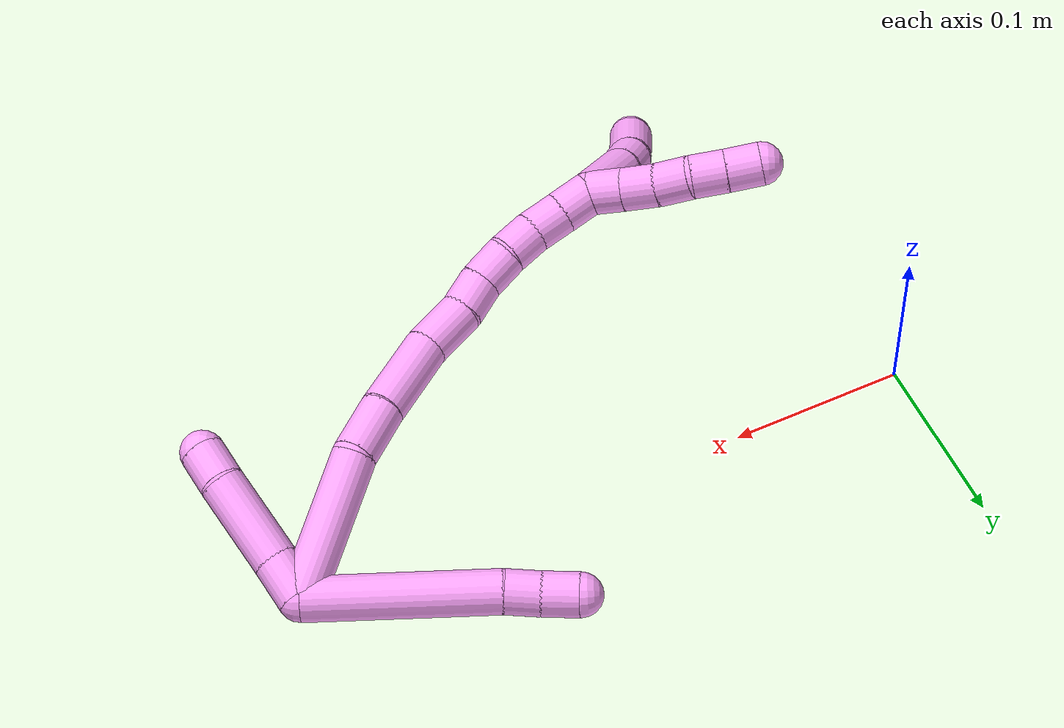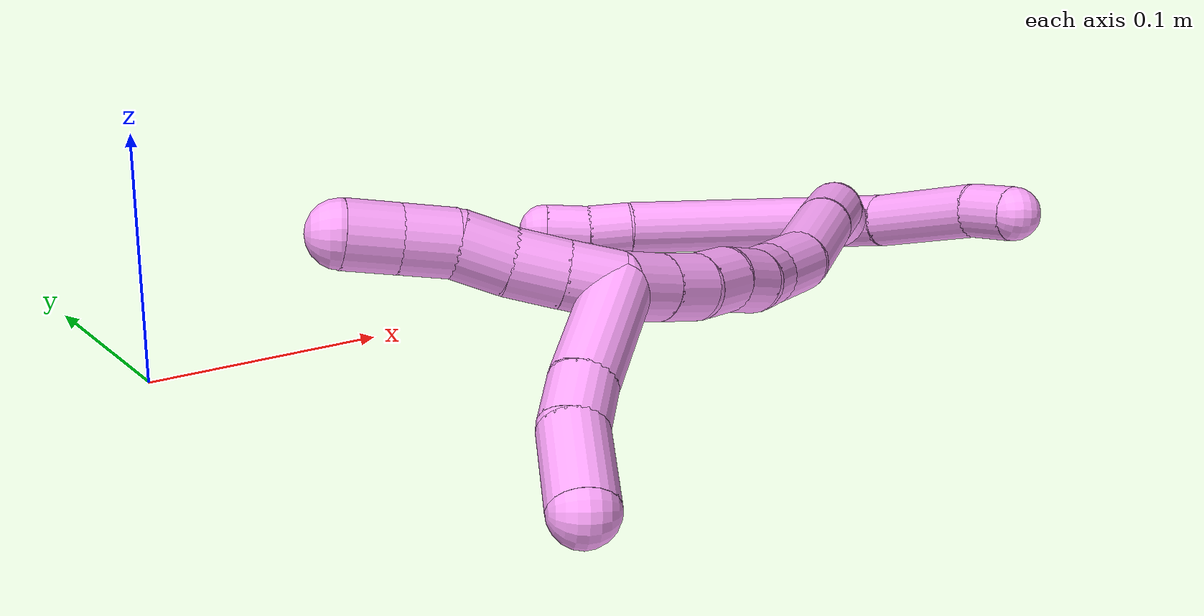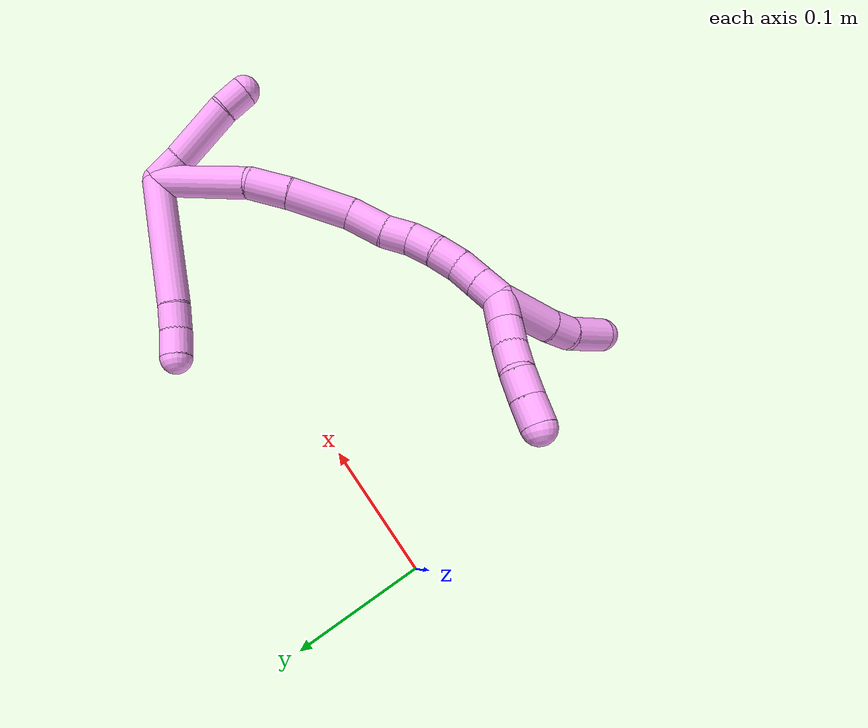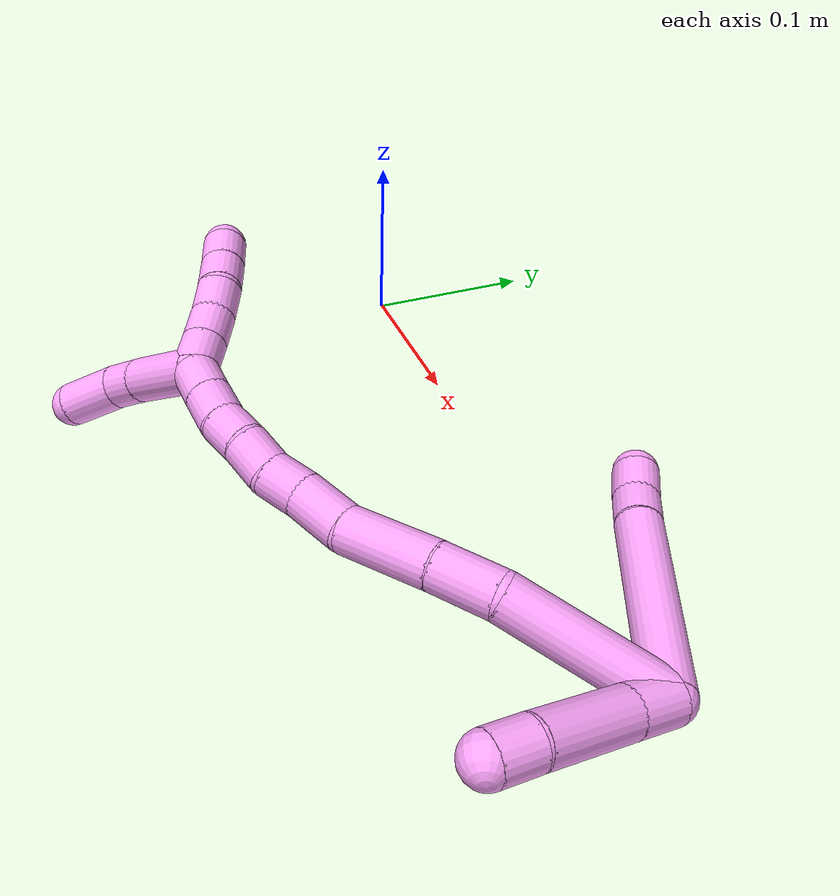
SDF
<sdf version="1.7">
 <world name="default">
  <model name="4">
   <static>0</static>
   <link name="4">
    <collision name="collision-cylinder-e_1_2_8">
     <pose>-0.000386 -0.00151 -0.054261 3.11378 -0.007118 -0.501071</pose>
     <geometry><cylinder><radius>0.0125</radius><length>0.108567</length></cylinder></geometry>
     <surface>
      <friction><ode><mu>1.16</mu><mu2>1.16</mu2><slip1>0</slip1><slip2>0</slip2></ode></friction>
      <contact><ode><kp>1e+06</kp><kd>1</kd><max_vel>0</max_vel><min_depth>0.001</min_depth></ode></contact>
     </surface>
    </collision>
    <visual name="visual-cylinder-e_1_2_8">
     <pose>-0.000386 -0.00151 -0.054261 3.11378 -0.007118 -0.501071</pose>
     <geometry><cylinder><radius>0.0125</radius><length>0.108567</length></cylinder></geometry>
     <material><ambient>1 0.65098 0.996078 1</ambient></material>
    </visual>
    <collision name="collision-cylinder-e_2_8_9">
     <pose>-9.3e-05 -0.004049 -0.118611 3.03983 0.066948 1.16338</pose>
     <geometry><cylinder><radius>0.0125</radius><length>0.020329</length></cylinder></geometry>
     <surface>
      <friction><ode><mu>1.16</mu><mu2>1.16</mu2><slip1>0</slip1><slip2>0</slip2></ode></friction>
      <contact><ode><kp>1e+06</kp><kd>1</kd><max_vel>0</max_vel><min_depth>0.001</min_depth></ode></contact>
     </surface>
    </collision>
    <visual name="visual-cylinder-e_2_8_9">
     <pose>-9.3e-05 -0.004049 -0.118611 3.03983 0.066948 1.16338</pose>
     <geometry><cylinder><radius>0.0125</radius><length>0.020329</length></cylinder></geometry>
     <material><ambient>1 0.65098 0.996078 1</ambient></material>
    </visual>
    <collision name="collision-cylinder-e_3_9_6">
     <pose>0.0015 -0.004852 -0.13921 -3.11992 0.086626 -2.65147</pose>
     <geometry><cylinder><radius>0.0125</radius><length>0.021105</length></cylinder></geometry>
     <surface>
      <friction><ode><mu>1.16</mu><mu2>1.16</mu2><slip1>0</slip1><slip2>0</slip2></ode></friction>
      <contact><ode><kp>1e+06</kp><kd>1</kd><max_vel>0</max_vel><min_depth>0.001</min_depth></ode></contact>
     </surface>
    </collision>
    <visual name="visual-cylinder-e_3_9_6">
     <pose>0.0015 -0.004852 -0.13921 -3.11992 0.086626 -2.65147</pose>
     <geometry><cylinder><radius>0.0125</radius><length>0.021105</length></cylinder></geometry>
     <material><ambient>1 0.65098 0.996078 1</ambient></material>
    </visual>
    <collision name="collision-cylinder-e_1_2_10">
     <pose>-0.01057 0.00225 0.0066 -0.328546 -0.98767 0.178001</pose>
     <geometry><cylinder><radius>0.0125</radius><length>0.025326</length></cylinder></geometry>
     <surface>
      <friction><ode><mu>1.16</mu><mu2>1.16</mu2><slip1>0</slip1><slip2>0</slip2></ode></friction>
      <contact><ode><kp>1e+06</kp><kd>1</kd><max_vel>0</max_vel><min_depth>0.001</min_depth></ode></contact>
     </surface>
    </collision>
    <visual name="visual-cylinder-e_1_2_10">
     <pose>-0.01057 0.00225 0.0066 -0.328546 -0.98767 0.178001</pose>
     <geometry><cylinder><radius>0.0125</radius><length>0.025326</length></cylinder></geometry>
     <material><ambient>1 0.65098 0.996078 1</ambient></material>
    </visual>
    <collision name="collision-cylinder-e_2_10_11">
     <pose>-0.042441 0.010859 0.027547 -0.417222 -0.935802 0.213136</pose>
     <geometry><cylinder><radius>0.0125</radius><length>0.052915</length></cylinder></geometry>
     <surface>
      <friction><ode><mu>1.16</mu><mu2>1.16</mu2><slip1>0</slip1><slip2>0</slip2></ode></friction>
      <contact><ode><kp>1e+06</kp><kd>1</kd><max_vel>0</max_vel><min_depth>0.001</min_depth></ode></contact>
     </surface>
    </collision>
    <visual name="visual-cylinder-e_2_10_11">
     <pose>-0.042441 0.010859 0.027547 -0.417222 -0.935802 0.213136</pose>
     <geometry><cylinder><radius>0.0125</radius><length>0.052915</length></cylinder></geometry>
     <material><ambient>1 0.65098 0.996078 1</ambient></material>
    </visual>
    <collision name="collision-cylinder-e_3_11_5">
     <pose>-0.073067 0.01815 0.04742 -0.16697 -1.02974 0.094616</pose>
     <geometry><cylinder><radius>0.0125</radius><length>0.021759</length></cylinder></geometry>
     <surface>
      <friction><ode><mu>1.16</mu><mu2>1.16</mu2><slip1>0</slip1><slip2>0</slip2></ode></friction>
      <contact><ode><kp>1e+06</kp><kd>1</kd><max_vel>0</max_vel><min_depth>0.001</min_depth></ode></contact>
     </surface>
    </collision>
    <visual name="visual-cylinder-e_3_11_5">
     <pose>-0.073067 0.01815 0.04742 -0.16697 -1.02974 0.094616</pose>
     <geometry><cylinder><radius>0.0125</radius><length>0.021759</length></cylinder></geometry>
     <material><ambient>1 0.65098 0.996078 1</ambient></material>
    </visual>
    <collision name="collision-cylinder-e_1_2_12">
     <pose>-0.03787 0.009881 -0.014975 -2.55835 -1.12836 2.25572</pose>
     <geometry><cylinder><radius>0.0125</radius><length>0.083811</length></cylinder></geometry>
     <surface>
      <friction><ode><mu>1.16</mu><mu2>1.16</mu2><slip1>0</slip1><slip2>0</slip2></ode></friction>
      <contact><ode><kp>1e+06</kp><kd>1</kd><max_vel>0</max_vel><min_depth>0.001</min_depth></ode></contact>
     </surface>
    </collision>
    <visual name="visual-cylinder-e_1_2_12">
     <pose>-0.03787 0.009881 -0.014975 -2.55835 -1.12836 2.25572</pose>
     <geometry><cylinder><radius>0.0125</radius><length>0.083811</length></cylinder></geometry>
     <material><ambient>1 0.65098 0.996078 1</ambient></material>
    </visual>
    <collision name="collision-cylinder-e_2_12_13">
     <pose>-0.09042 0.018939 -0.037362 3.03105 -1.10076 -2.96175</pose>
     <geometry><cylinder><radius>0.0125</radius><length>0.032928</length></cylinder></geometry>
     <surface>
      <friction><ode><mu>1.16</mu><mu2>1.16</mu2><slip1>0</slip1><slip2>0</slip2></ode></friction>
      <contact><ode><kp>1e+06</kp><kd>1</kd><max_vel>0</max_vel><min_depth>0.001</min_depth></ode></contact>
     </surface>
    </collision>
    <visual name="visual-cylinder-e_2_12_13">
     <pose>-0.09042 0.018939 -0.037362 3.03105 -1.10076 -2.96175</pose>
     <geometry><cylinder><radius>0.0125</radius><length>0.032928</length></cylinder></geometry>
     <material><ambient>1 0.65098 0.996078 1</ambient></material>
    </visual>
    <collision name="collision-cylinder-e_3_13_14">
     <pose>-0.126453 0.014741 -0.056479 2.86086 -1.05237 -2.66431</pose>
     <geometry><cylinder><radius>0.0125</radius><length>0.04917</length></cylinder></geometry>
     <surface>
      <friction><ode><mu>1.16</mu><mu2>1.16</mu2><slip1>0</slip1><slip2>0</slip2></ode></friction>
      <contact><ode><kp>1e+06</kp><kd>1</kd><max_vel>0</max_vel><min_depth>0.001</min_depth></ode></contact>
     </surface>
    </collision>
    <visual name="visual-cylinder-e_3_13_14">
     <pose>-0.126453 0.014741 -0.056479 2.86086 -1.05237 -2.66431</pose>
     <geometry><cylinder><radius>0.0125</radius><length>0.04917</length></cylinder></geometry>
     <material><ambient>1 0.65098 0.996078 1</ambient></material>
    </visual>
    <collision name="collision-cylinder-e_4_14_15">
     <pose>-0.159196 0.011163 -0.078162 3.12119 -0.851246 -3.09659</pose>
     <geometry><cylinder><radius>0.0125</radius><length>0.030286</length></cylinder></geometry>
     <surface>
      <friction><ode><mu>1.16</mu><mu2>1.16</mu2><slip1>0</slip1><slip2>0</slip2></ode></friction>
      <contact><ode><kp>1e+06</kp><kd>1</kd><max_vel>0</max_vel><min_depth>0.001</min_depth></ode></contact>
     </surface>
    </collision>
    <visual name="visual-cylinder-e_4_14_15">
     <pose>-0.159196 0.011163 -0.078162 3.12119 -0.851246 -3.09659</pose>
     <geometry><cylinder><radius>0.0125</radius><length>0.030286</length></cylinder></geometry>
     <material><ambient>1 0.65098 0.996078 1</ambient></material>
    </visual>
    <collision name="collision-cylinder-e_5_15_16">
     <pose>-0.179743 0.011723 -0.093713 -3.00535 -1.01995 2.89882</pose>
     <geometry><cylinder><radius>0.0125</radius><length>0.021495</length></cylinder></geometry>
     <surface>
      <friction><ode><mu>1.16</mu><mu2>1.16</mu2><slip1>0</slip1><slip2>0</slip2></ode></friction>
      <contact><ode><kp>1e+06</kp><kd>1</kd><max_vel>0</max_vel><min_depth>0.001</min_depth></ode></contact>
     </surface>
    </collision>
    <visual name="visual-cylinder-e_5_15_16">
     <pose>-0.179743 0.011723 -0.093713 -3.00535 -1.01995 2.89882</pose>
     <geometry><cylinder><radius>0.0125</radius><length>0.021495</length></cylinder></geometry>
     <material><ambient>1 0.65098 0.996078 1</ambient></material>
    </visual>
    <collision name="collision-cylinder-e_6_16_17">
     <pose>-0.196482 0.014519 -0.10684 -2.87881 -0.769756 2.51089</pose>
     <geometry><cylinder><radius>0.0125</radius><length>0.021787</length></cylinder></geometry>
     <surface>
      <friction><ode><mu>1.16</mu><mu2>1.16</mu2><slip1>0</slip1><slip2>0</slip2></ode></friction>
      <contact><ode><kp>1e+06</kp><kd>1</kd><max_vel>0</max_vel><min_depth>0.001</min_depth></ode></contact>
     </surface>
    </collision>
    <visual name="visual-cylinder-e_6_16_17">
     <pose>-0.196482 0.014519 -0.10684 -2.87881 -0.769756 2.51089</pose>
     <geometry><cylinder><radius>0.0125</radius><length>0.021787</length></cylinder></geometry>
     <material><ambient>1 0.65098 0.996078 1</ambient></material>
    </visual>
    <collision name="collision-cylinder-e_7_17_18">
     <pose>-0.211133 0.016724 -0.121762 -3.11807 -0.764574 3.08309</pose>
     <geometry><cylinder><radius>0.0125</radius><length>0.020425</length></cylinder></geometry>
     <surface>
      <friction><ode><mu>1.16</mu><mu2>1.16</mu2><slip1>0</slip1><slip2>0</slip2></ode></friction>
      <contact><ode><kp>1e+06</kp><kd>1</kd><max_vel>0</max_vel><min_depth>0.001</min_depth></ode></contact>
     </surface>
    </collision>
    <visual name="visual-cylinder-e_7_17_18">
     <pose>-0.211133 0.016724 -0.121762 -3.11807 -0.764574 3.08309</pose>
     <geometry><cylinder><radius>0.0125</radius><length>0.020425</length></cylinder></geometry>
     <material><ambient>1 0.65098 0.996078 1</ambient></material>
    </visual>
    <collision name="collision-cylinder-e_8_18_19">
     <pose>-0.223626 0.018131 -0.137498 -2.99524 -0.570182 2.65139</pose>
     <geometry><cylinder><radius>0.0125</radius><length>0.020096</length></cylinder></geometry>
     <surface>
      <friction><ode><mu>1.16</mu><mu2>1.16</mu2><slip1>0</slip1><slip2>0</slip2></ode></friction>
      <contact><ode><kp>1e+06</kp><kd>1</kd><max_vel>0</max_vel><min_depth>0.001</min_depth></ode></contact>
     </surface>
    </collision>
    <visual name="visual-cylinder-e_8_18_19">
     <pose>-0.223626 0.018131 -0.137498 -2.99524 -0.570182 2.65139</pose>
     <geometry><cylinder><radius>0.0125</radius><length>0.020096</length></cylinder></geometry>
     <material><ambient>1 0.65098 0.996078 1</ambient></material>
    </visual>
    <collision name="collision-cylinder-e_9_19_1">
     <pose>-0.23431 0.020914 -0.154229 -2.95847 -0.553904 2.51673</pose>
     <geometry><cylinder><radius>0.0125</radius><length>0.020003</length></cylinder></geometry>
     <surface>
      <friction><ode><mu>1.16</mu><mu2>1.16</mu2><slip1>0</slip1><slip2>0</slip2></ode></friction>
      <contact><ode><kp>1e+06</kp><kd>1</kd><max_vel>0</max_vel><min_depth>0.001</min_depth></ode></contact>
     </surface>
    </collision>
    <visual name="visual-cylinder-e_9_19_1">
     <pose>-0.23431 0.020914 -0.154229 -2.95847 -0.553904 2.51673</pose>
     <geometry><cylinder><radius>0.0125</radius><length>0.020003</length></cylinder></geometry>
     <material><ambient>1 0.65098 0.996078 1</ambient></material>
    </visual>
    <collision name="collision-cylinder-e_1_1_20">
     <pose>-0.256675 0.009674 -0.171605 2.18468 -0.829906 -1.40827</pose>
     <geometry><cylinder><radius>0.0125</radius><length>0.046359</length></cylinder></geometry>
     <surface>
      <friction><ode><mu>1.16</mu><mu2>1.16</mu2><slip1>0</slip1><slip2>0</slip2></ode></friction>
      <contact><ode><kp>1e+06</kp><kd>1</kd><max_vel>0</max_vel><min_depth>0.001</min_depth></ode></contact>
     </surface>
    </collision>
    <visual name="visual-cylinder-e_1_1_20">
     <pose>-0.256675 0.009674 -0.171605 2.18468 -0.829906 -1.40827</pose>
     <geometry><cylinder><radius>0.0125</radius><length>0.046359</length></cylinder></geometry>
     <material><ambient>1 0.65098 0.996078 1</ambient></material>
    </visual>
    <collision name="collision-cylinder-e_2_20_21">
     <pose>-0.281737 -0.008774 -0.183566 2.05112 -0.894906 -1.3387</pose>
     <geometry><cylinder><radius>0.0125</radius><length>0.020403</length></cylinder></geometry>
     <surface>
      <friction><ode><mu>1.16</mu><mu2>1.16</mu2><slip1>0</slip1><slip2>0</slip2></ode></friction>
      <contact><ode><kp>1e+06</kp><kd>1</kd><max_vel>0</max_vel><min_depth>0.001</min_depth></ode></contact>
     </surface>
    </collision>
    <visual name="visual-cylinder-e_2_20_21">
     <pose>-0.281737 -0.008774 -0.183566 2.05112 -0.894906 -1.3387</pose>
     <geometry><cylinder><radius>0.0125</radius><length>0.020403</length></cylinder></geometry>
     <material><ambient>1 0.65098 0.996078 1</ambient></material>
    </visual>
    <collision name="collision-cylinder-e_3_21_4">
     <pose>-0.303632 -0.023477 -0.186939 1.61764 -0.99474 -1.03454</pose>
     <geometry><cylinder><radius>0.0125</radius><length>0.033238</length></cylinder></geometry>
     <surface>
      <friction><ode><mu>1.16</mu><mu2>1.16</mu2><slip1>0</slip1><slip2>0</slip2></ode></friction>
      <contact><ode><kp>1e+06</kp><kd>1</kd><max_vel>0</max_vel><min_depth>0.001</min_depth></ode></contact>
     </surface>
    </collision>
    <visual name="visual-cylinder-e_3_21_4">
     <pose>-0.303632 -0.023477 -0.186939 1.61764 -0.99474 -1.03454</pose>
     <geometry><cylinder><radius>0.0125</radius><length>0.033238</length></cylinder></geometry>
     <material><ambient>1 0.65098 0.996078 1</ambient></material>
    </visual>
    <collision name="collision-cylinder-e_1_1_22">
     <pose>-0.238919 0.024411 -0.17238 -2.9451 0.065232 -0.639343</pose>
     <geometry><cylinder><radius>0.0125</radius><length>0.02</length></cylinder></geometry>
     <surface>
      <friction><ode><mu>1.16</mu><mu2>1.16</mu2><slip1>0</slip1><slip2>0</slip2></ode></friction>
      <contact><ode><kp>1e+06</kp><kd>1</kd><max_vel>0</max_vel><min_depth>0.001</min_depth></ode></contact>
     </surface>
    </collision>
    <visual name="visual-cylinder-e_1_1_22">
     <pose>-0.238919 0.024411 -0.17238 -2.9451 0.065232 -0.639343</pose>
     <geometry><cylinder><radius>0.0125</radius><length>0.02</length></cylinder></geometry>
     <material><ambient>1 0.65098 0.996078 1</ambient></material>
    </visual>
    <collision name="collision-cylinder-e_2_22_23">
     <pose>-0.237701 0.028568 -0.191903 -2.91845 0.056732 -0.49607</pose>
     <geometry><cylinder><radius>0.0125</radius><length>0.02</length></cylinder></geometry>
     <surface>
      <friction><ode><mu>1.16</mu><mu2>1.16</mu2><slip1>0</slip1><slip2>0</slip2></ode></friction>
      <contact><ode><kp>1e+06</kp><kd>1</kd><max_vel>0</max_vel><min_depth>0.001</min_depth></ode></contact>
     </surface>
    </collision>
    <visual name="visual-cylinder-e_2_22_23">
     <pose>-0.237701 0.028568 -0.191903 -2.91845 0.056732 -0.49607</pose>
     <geometry><cylinder><radius>0.0125</radius><length>0.02</length></cylinder></geometry>
     <material><ambient>1 0.65098 0.996078 1</ambient></material>
    </visual>
    <collision name="collision-cylinder-e_3_23_24">
     <pose>-0.236976 0.034028 -0.211095 -2.81048 0.015769 -0.094308</pose>
     <geometry><cylinder><radius>0.0125</radius><length>0.02</length></cylinder></geometry>
     <surface>
      <friction><ode><mu>1.16</mu><mu2>1.16</mu2><slip1>0</slip1><slip2>0</slip2></ode></friction>
      <contact><ode><kp>1e+06</kp><kd>1</kd><max_vel>0</max_vel><min_depth>0.001</min_depth></ode></contact>
     </surface>
    </collision>
    <visual name="visual-cylinder-e_3_23_24">
     <pose>-0.236976 0.034028 -0.211095 -2.81048 0.015769 -0.094308</pose>
     <geometry><cylinder><radius>0.0125</radius><length>0.02</length></cylinder></geometry>
     <material><ambient>1 0.65098 0.996078 1</ambient></material>
    </visual>
    <collision name="collision-cylinder-e_4_24_25">
     <pose>-0.237692 0.0383 -0.23046 -3.03894 -0.087481 1.41134</pose>
     <geometry><cylinder><radius>0.0125</radius><length>0.02</length></cylinder></geometry>
     <surface>
      <friction><ode><mu>1.16</mu><mu2>1.16</mu2><slip1>0</slip1><slip2>0</slip2></ode></friction>
      <contact><ode><kp>1e+06</kp><kd>1</kd><max_vel>0</max_vel><min_depth>0.001</min_depth></ode></contact>
     </surface>
    </collision>
    <visual name="visual-cylinder-e_4_24_25">
     <pose>-0.237692 0.0383 -0.23046 -3.03894 -0.087481 1.41134</pose>
     <geometry><cylinder><radius>0.0125</radius><length>0.02</length></cylinder></geometry>
     <material><ambient>1 0.65098 0.996078 1</ambient></material>
    </visual>
    <collision name="collision-cylinder-e_5_25_3">
     <pose>-0.239733 0.040397 -0.250242 -3.03298 -0.117062 1.64577</pose>
     <geometry><cylinder><radius>0.0125</radius><length>0.02</length></cylinder></geometry>
     <surface>
      <friction><ode><mu>1.16</mu><mu2>1.16</mu2><slip1>0</slip1><slip2>0</slip2></ode></friction>
      <contact><ode><kp>1e+06</kp><kd>1</kd><max_vel>0</max_vel><min_depth>0.001</min_depth></ode></contact>
     </surface>
    </collision>
    <visual name="visual-cylinder-e_5_25_3">
     <pose>-0.239733 0.040397 -0.250242 -3.03298 -0.117062 1.64577</pose>
     <geometry><cylinder><radius>0.0125</radius><length>0.02</length></cylinder></geometry>
     <material><ambient>1 0.65098 0.996078 1</ambient></material>
    </visual>
    <collision name="collision-sphere-3">
     <pose>-0.240901 0.041474 -0.260115 0 -0 0</pose>
     <geometry><sphere><radius>0.0125</radius></sphere></geometry>
     <surface>
      <friction><ode><mu>1.16</mu><mu2>1.16</mu2><slip1>0</slip1><slip2>0</slip2></ode></friction>
      <contact><ode><kp>1e+06</kp><kd>1</kd><max_vel>0</max_vel><min_depth>0.001</min_depth></ode></contact>
     </surface>
    </collision>
    <visual name="visual-sphere-3">
     <pose>-0.240901 0.041474 -0.260115 0 -0 0</pose>
     <geometry><sphere><radius>0.0125</radius></sphere></geometry>
     <material><ambient>1 0.65098 0.996078 1</ambient></material>
    </visual>
    <collision name="collision-sphere-25">
     <pose>-0.238566 0.039321 -0.240369 0 -0 0</pose>
     <geometry><sphere><radius>0.0125</radius></sphere></geometry>
     <surface>
      <friction><ode><mu>1.16</mu><mu2>1.16</mu2><slip1>0</slip1><slip2>0</slip2></ode></friction>
      <contact><ode><kp>1e+06</kp><kd>1</kd><max_vel>0</max_vel><min_depth>0.001</min_depth></ode></contact>
     </surface>
    </collision>
    <visual name="visual-sphere-25">
     <pose>-0.238566 0.039321 -0.240369 0 -0 0</pose>
     <geometry><sphere><radius>0.0125</radius></sphere></geometry>
     <material><ambient>1 0.65098 0.996078 1</ambient></material>
    </visual>
    <collision name="collision-sphere-24">
     <pose>-0.236818 0.037279 -0.22055 0 -0 0</pose>
     <geometry><sphere><radius>0.0125</radius></sphere></geometry>
     <surface>
      <friction><ode><mu>1.16</mu><mu2>1.16</mu2><slip1>0</slip1><slip2>0</slip2></ode></friction>
      <contact><ode><kp>1e+06</kp><kd>1</kd><max_vel>0</max_vel><min_depth>0.001</min_depth></ode></contact>
     </surface>
    </collision>
    <visual name="visual-sphere-24">
     <pose>-0.236818 0.037279 -0.22055 0 -0 0</pose>
     <geometry><sphere><radius>0.0125</radius></sphere></geometry>
     <material><ambient>1 0.65098 0.996078 1</ambient></material>
    </visual>
    <collision name="collision-sphere-23">
     <pose>-0.237133 0.030778 -0.201639 0 -0 0</pose>
     <geometry><sphere><radius>0.0125</radius></sphere></geometry>
     <surface>
      <friction><ode><mu>1.16</mu><mu2>1.16</mu2><slip1>0</slip1><slip2>0</slip2></ode></friction>
      <contact><ode><kp>1e+06</kp><kd>1</kd><max_vel>0</max_vel><min_depth>0.001</min_depth></ode></contact>
     </surface>
    </collision>
    <visual name="visual-sphere-23">
     <pose>-0.237133 0.030778 -0.201639 0 -0 0</pose>
     <geometry><sphere><radius>0.0125</radius></sphere></geometry>
     <material><ambient>1 0.65098 0.996078 1</ambient></material>
    </visual>
    <collision name="collision-sphere-22">
     <pose>-0.238268 0.026359 -0.182166 0 -0 0</pose>
     <geometry><sphere><radius>0.0125</radius></sphere></geometry>
     <surface>
      <friction><ode><mu>1.16</mu><mu2>1.16</mu2><slip1>0</slip1><slip2>0</slip2></ode></friction>
      <contact><ode><kp>1e+06</kp><kd>1</kd><max_vel>0</max_vel><min_depth>0.001</min_depth></ode></contact>
     </surface>
    </collision>
    <visual name="visual-sphere-22">
     <pose>-0.238268 0.026359 -0.182166 0 -0 0</pose>
     <geometry><sphere><radius>0.0125</radius></sphere></geometry>
     <material><ambient>1 0.65098 0.996078 1</ambient></material>
    </visual>
    <collision name="collision-sphere-4">
     <pose>-0.317569 -0.032519 -0.187363 0 -0 0</pose>
     <geometry><sphere><radius>0.0125</radius></sphere></geometry>
     <surface>
      <friction><ode><mu>1.16</mu><mu2>1.16</mu2><slip1>0</slip1><slip2>0</slip2></ode></friction>
      <contact><ode><kp>1e+06</kp><kd>1</kd><max_vel>0</max_vel><min_depth>0.001</min_depth></ode></contact>
     </surface>
    </collision>
    <visual name="visual-sphere-4">
     <pose>-0.317569 -0.032519 -0.187363 0 -0 0</pose>
     <geometry><sphere><radius>0.0125</radius></sphere></geometry>
     <material><ambient>1 0.65098 0.996078 1</ambient></material>
    </visual>
    <collision name="collision-sphere-21">
     <pose>-0.289695 -0.014434 -0.186515 0 -0 0</pose>
     <geometry><sphere><radius>0.0125</radius></sphere></geometry>
     <surface>
      <friction><ode><mu>1.16</mu><mu2>1.16</mu2><slip1>0</slip1><slip2>0</slip2></ode></friction>
      <contact><ode><kp>1e+06</kp><kd>1</kd><max_vel>0</max_vel><min_depth>0.001</min_depth></ode></contact>
     </surface>
    </collision>
    <visual name="visual-sphere-21">
     <pose>-0.289695 -0.014434 -0.186515 0 -0 0</pose>
     <geometry><sphere><radius>0.0125</radius></sphere></geometry>
     <material><ambient>1 0.65098 0.996078 1</ambient></material>
    </visual>
    <collision name="collision-sphere-20">
     <pose>-0.273778 -0.003114 -0.180617 0 -0 0</pose>
     <geometry><sphere><radius>0.0125</radius></sphere></geometry>
     <surface>
      <friction><ode><mu>1.16</mu><mu2>1.16</mu2><slip1>0</slip1><slip2>0</slip2></ode></friction>
      <contact><ode><kp>1e+06</kp><kd>1</kd><max_vel>0</max_vel><min_depth>0.001</min_depth></ode></contact>
     </surface>
    </collision>
    <visual name="visual-sphere-20">
     <pose>-0.273778 -0.003114 -0.180617 0 -0 0</pose>
     <geometry><sphere><radius>0.0125</radius></sphere></geometry>
     <material><ambient>1 0.65098 0.996078 1</ambient></material>
    </visual>
    <collision name="collision-sphere-11">
     <pose>-0.063741 0.017219 0.041895 0 -0 0</pose>
     <geometry><sphere><radius>0.0125</radius></sphere></geometry>
     <surface>
      <friction><ode><mu>1.16</mu><mu2>1.16</mu2><slip1>0</slip1><slip2>0</slip2></ode></friction>
      <contact><ode><kp>1e+06</kp><kd>1</kd><max_vel>0</max_vel><min_depth>0.001</min_depth></ode></contact>
     </surface>
    </collision>
    <visual name="visual-sphere-11">
     <pose>-0.063741 0.017219 0.041895 0 -0 0</pose>
     <geometry><sphere><radius>0.0125</radius></sphere></geometry>
     <material><ambient>1 0.65098 0.996078 1</ambient></material>
    </visual>
    <collision name="collision-sphere-10">
     <pose>-0.02114 0.0045 0.013199 0 -0 0</pose>
     <geometry><sphere><radius>0.0125</radius></sphere></geometry>
     <surface>
      <friction><ode><mu>1.16</mu><mu2>1.16</mu2><slip1>0</slip1><slip2>0</slip2></ode></friction>
      <contact><ode><kp>1e+06</kp><kd>1</kd><max_vel>0</max_vel><min_depth>0.001</min_depth></ode></contact>
     </surface>
    </collision>
    <visual name="visual-sphere-10">
     <pose>-0.02114 0.0045 0.013199 0 -0 0</pose>
     <geometry><sphere><radius>0.0125</radius></sphere></geometry>
     <material><ambient>1 0.65098 0.996078 1</ambient></material>
    </visual>
    <collision name="collision-sphere-6">
     <pose>0.002413 -0.004624 -0.149721 0 -0 0</pose>
     <geometry><sphere><radius>0.0125</radius></sphere></geometry>
     <surface>
      <friction><ode><mu>1.16</mu><mu2>1.16</mu2><slip1>0</slip1><slip2>0</slip2></ode></friction>
      <contact><ode><kp>1e+06</kp><kd>1</kd><max_vel>0</max_vel><min_depth>0.001</min_depth></ode></contact>
     </surface>
    </collision>
    <visual name="visual-sphere-6">
     <pose>0.002413 -0.004624 -0.149721 0 -0 0</pose>
     <geometry><sphere><radius>0.0125</radius></sphere></geometry>
     <material><ambient>1 0.65098 0.996078 1</ambient></material>
    </visual>
    <collision name="collision-sphere-9">
     <pose>0.000587 -0.005079 -0.1287 0 -0 0</pose>
     <geometry><sphere><radius>0.0125</radius></sphere></geometry>
     <surface>
      <friction><ode><mu>1.16</mu><mu2>1.16</mu2><slip1>0</slip1><slip2>0</slip2></ode></friction>
      <contact><ode><kp>1e+06</kp><kd>1</kd><max_vel>0</max_vel><min_depth>0.001</min_depth></ode></contact>
     </surface>
    </collision>
    <visual name="visual-sphere-9">
     <pose>0.000587 -0.005079 -0.1287 0 -0 0</pose>
     <geometry><sphere><radius>0.0125</radius></sphere></geometry>
     <material><ambient>1 0.65098 0.996078 1</ambient></material>
    </visual>
    <collision name="collision-sphere-2">
     <geometry><sphere><radius>0.0125</radius></sphere></geometry>
     <surface>
      <friction><ode><mu>1.16</mu><mu2>1.16</mu2><slip1>0</slip1><slip2>0</slip2></ode></friction>
      <contact><ode><kp>1e+06</kp><kd>1</kd><max_vel>0</max_vel><min_depth>0.001</min_depth></ode></contact>
     </surface>
    </collision>
    <visual name="visual-sphere-2">
     <geometry><sphere><radius>0.0125</radius></sphere></geometry>
     <material><ambient>1 0.65098 0.996078 1</ambient></material>
    </visual>
    <collision name="collision-sphere-19">
     <pose>-0.22905 0.019365 -0.145866 0 -0 0</pose>
     <geometry><sphere><radius>0.0125</radius></sphere></geometry>
     <surface>
      <friction><ode><mu>1.16</mu><mu2>1.16</mu2><slip1>0</slip1><slip2>0</slip2></ode></friction>
      <contact><ode><kp>1e+06</kp><kd>1</kd><max_vel>0</max_vel><min_depth>0.001</min_depth></ode></contact>
     </surface>
    </collision>
    <visual name="visual-sphere-19">
     <pose>-0.22905 0.019365 -0.145866 0 -0 0</pose>
     <geometry><sphere><radius>0.0125</radius></sphere></geometry>
     <material><ambient>1 0.65098 0.996078 1</ambient></material>
    </visual>
    <collision name="collision-sphere-8">
     <pose>-0.000773 -0.003019 -0.108522 0 -0 0</pose>
     <geometry><sphere><radius>0.0125</radius></sphere></geometry>
     <surface>
      <friction><ode><mu>1.16</mu><mu2>1.16</mu2><slip1>0</slip1><slip2>0</slip2></ode></friction>
      <contact><ode><kp>1e+06</kp><kd>1</kd><max_vel>0</max_vel><min_depth>0.001</min_depth></ode></contact>
     </surface>
    </collision>
    <visual name="visual-sphere-8">
     <pose>-0.000773 -0.003019 -0.108522 0 -0 0</pose>
     <geometry><sphere><radius>0.0125</radius></sphere></geometry>
     <material><ambient>1 0.65098 0.996078 1</ambient></material>
    </visual>
    <collision name="collision-sphere-5">
     <pose>-0.082392 0.019081 0.052946 0 -0 0</pose>
     <geometry><sphere><radius>0.0125</radius></sphere></geometry>
     <surface>
      <friction><ode><mu>1.16</mu><mu2>1.16</mu2><slip1>0</slip1><slip2>0</slip2></ode></friction>
      <contact><ode><kp>1e+06</kp><kd>1</kd><max_vel>0</max_vel><min_depth>0.001</min_depth></ode></contact>
     </surface>
    </collision>
    <visual name="visual-sphere-5">
     <pose>-0.082392 0.019081 0.052946 0 -0 0</pose>
     <geometry><sphere><radius>0.0125</radius></sphere></geometry>
     <material><ambient>1 0.65098 0.996078 1</ambient></material>
    </visual>
    <collision name="collision-sphere-12">
     <pose>-0.075741 0.019762 -0.029951 0 -0 0</pose>
     <geometry><sphere><radius>0.0125</radius></sphere></geometry>
     <surface>
      <friction><ode><mu>1.16</mu><mu2>1.16</mu2><slip1>0</slip1><slip2>0</slip2></ode></friction>
      <contact><ode><kp>1e+06</kp><kd>1</kd><max_vel>0</max_vel><min_depth>0.001</min_depth></ode></contact>
     </surface>
    </collision>
    <visual name="visual-sphere-12">
     <pose>-0.075741 0.019762 -0.029951 0 -0 0</pose>
     <geometry><sphere><radius>0.0125</radius></sphere></geometry>
     <material><ambient>1 0.65098 0.996078 1</ambient></material>
    </visual>
    <collision name="collision-sphere-13">
     <pose>-0.105098 0.018117 -0.044773 0 -0 0</pose>
     <geometry><sphere><radius>0.0125</radius></sphere></geometry>
     <surface>
      <friction><ode><mu>1.16</mu><mu2>1.16</mu2><slip1>0</slip1><slip2>0</slip2></ode></friction>
      <contact><ode><kp>1e+06</kp><kd>1</kd><max_vel>0</max_vel><min_depth>0.001</min_depth></ode></contact>
     </surface>
    </collision>
    <visual name="visual-sphere-13">
     <pose>-0.105098 0.018117 -0.044773 0 -0 0</pose>
     <geometry><sphere><radius>0.0125</radius></sphere></geometry>
     <material><ambient>1 0.65098 0.996078 1</ambient></material>
    </visual>
    <collision name="collision-sphere-14">
     <pose>-0.147807 0.011366 -0.068184 0 -0 0</pose>
     <geometry><sphere><radius>0.0125</radius></sphere></geometry>
     <surface>
      <friction><ode><mu>1.16</mu><mu2>1.16</mu2><slip1>0</slip1><slip2>0</slip2></ode></friction>
      <contact><ode><kp>1e+06</kp><kd>1</kd><max_vel>0</max_vel><min_depth>0.001</min_depth></ode></contact>
     </surface>
    </collision>
    <visual name="visual-sphere-14">
     <pose>-0.147807 0.011366 -0.068184 0 -0 0</pose>
     <geometry><sphere><radius>0.0125</radius></sphere></geometry>
     <material><ambient>1 0.65098 0.996078 1</ambient></material>
    </visual>
    <collision name="collision-sphere-15">
     <pose>-0.170586 0.010959 -0.08814 0 -0 0</pose>
     <geometry><sphere><radius>0.0125</radius></sphere></geometry>
     <surface>
      <friction><ode><mu>1.16</mu><mu2>1.16</mu2><slip1>0</slip1><slip2>0</slip2></ode></friction>
      <contact><ode><kp>1e+06</kp><kd>1</kd><max_vel>0</max_vel><min_depth>0.001</min_depth></ode></contact>
     </surface>
    </collision>
    <visual name="visual-sphere-15">
     <pose>-0.170586 0.010959 -0.08814 0 -0 0</pose>
     <geometry><sphere><radius>0.0125</radius></sphere></geometry>
     <material><ambient>1 0.65098 0.996078 1</ambient></material>
    </visual>
    <collision name="collision-sphere-16">
     <pose>-0.188901 0.012487 -0.099286 0 -0 0</pose>
     <geometry><sphere><radius>0.0125</radius></sphere></geometry>
     <surface>
      <friction><ode><mu>1.16</mu><mu2>1.16</mu2><slip1>0</slip1><slip2>0</slip2></ode></friction>
      <contact><ode><kp>1e+06</kp><kd>1</kd><max_vel>0</max_vel><min_depth>0.001</min_depth></ode></contact>
     </surface>
    </collision>
    <visual name="visual-sphere-16">
     <pose>-0.188901 0.012487 -0.099286 0 -0 0</pose>
     <geometry><sphere><radius>0.0125</radius></sphere></geometry>
     <material><ambient>1 0.65098 0.996078 1</ambient></material>
    </visual>
    <collision name="collision-sphere-17">
     <pose>-0.204064 0.016551 -0.114394 0 -0 0</pose>
     <geometry><sphere><radius>0.0125</radius></sphere></geometry>
     <surface>
      <friction><ode><mu>1.16</mu><mu2>1.16</mu2><slip1>0</slip1><slip2>0</slip2></ode></friction>
      <contact><ode><kp>1e+06</kp><kd>1</kd><max_vel>0</max_vel><min_depth>0.001</min_depth></ode></contact>
     </surface>
    </collision>
    <visual name="visual-sphere-17">
     <pose>-0.204064 0.016551 -0.114394 0 -0 0</pose>
     <geometry><sphere><radius>0.0125</radius></sphere></geometry>
     <material><ambient>1 0.65098 0.996078 1</ambient></material>
    </visual>
    <collision name="collision-sphere-18">
     <pose>-0.218202 0.016898 -0.12913 0 -0 0</pose>
     <geometry><sphere><radius>0.0125</radius></sphere></geometry>
     <surface>
      <friction><ode><mu>1.16</mu><mu2>1.16</mu2><slip1>0</slip1><slip2>0</slip2></ode></friction>
      <contact><ode><kp>1e+06</kp><kd>1</kd><max_vel>0</max_vel><min_depth>0.001</min_depth></ode></contact>
     </surface>
    </collision>
    <visual name="visual-sphere-18">
     <pose>-0.218202 0.016898 -0.12913 0 -0 0</pose>
     <geometry><sphere><radius>0.0125</radius></sphere></geometry>
     <material><ambient>1 0.65098 0.996078 1</ambient></material>
    </visual>
    <collision name="collision-sphere-1">
     <pose>-0.239571 0.022463 -0.162593 0 -0 0</pose>
     <geometry><sphere><radius>0.0125</radius></sphere></geometry>
     <surface>
      <friction><ode><mu>1.16</mu><mu2>1.16</mu2><slip1>0</slip1><slip2>0</slip2></ode></friction>
      <contact><ode><kp>1e+06</kp><kd>1</kd><max_vel>0</max_vel><min_depth>0.001</min_depth></ode></contact>
     </surface>
    </collision>
    <visual name="visual-sphere-1">
     <pose>-0.239571 0.022463 -0.162593 0 -0 0</pose>
     <geometry><sphere><radius>0.0125</radius></sphere></geometry>
     <material><ambient>1 0.65098 0.996078 1</ambient></material>
    </visual>
    <inertial>
     <pose>-0.126004 0.010251 -0.090568 0 -0 0</pose>
     <mass>0.75</mass>
     <inertia><ixx>1.1e-05</ixx><ixy>0</ixy><ixz>0</ixz><iyy>-4.2e-05</iyy><iyz>0</iyz><izz>6.3e-05</izz></inertia>
    </inertial>
   </link>
   <pose>0.363086 -0.000945 0.011491 1.61372 0.076794 1.15249</pose>
  </model>
 </world>
</sdf>
